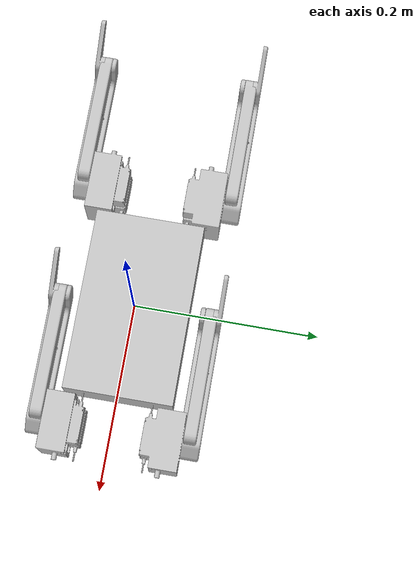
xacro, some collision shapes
<?xml version="1.0" encoding="utf-8"?>
<!-- Make changes at your own risk -->
<robot
  name="chitrak_description">
  <link name="base_link"></link>
  <link
    name="torso_link">
    <inertial>
      <origin
        xyz="-0.00238868927667727 -1.23101962146306E-05 -0.0259410834694735"
        rpy="0 0 0" />
      <mass
        value="0.531017962368296" />
      <inertia
        ixx="0.000784647282302847"
        ixy="-1.56473712454285E-07"
        ixz="-3.54024444284505E-06"
        iyy="0.000983761380504374"
        iyz="4.46505765897836E-08"
        izz="0.00139027431723193" />
    </inertial>
    <visual>
      <origin
        xyz="0 0 0"
        rpy="0 0 0" />
      <geometry>
        <mesh
          filename="package://chitrak_description/meshes/torso_link.STL" />
      </geometry>
      <material
        name="">
        <color
          rgba="0.752941176470588 0.752941176470588 0.752941176470588 1" />
      </material>
    </visual>
    <collision>
      <origin
        xyz="0 0 -0.025"
        rpy="0 0 0" />
      <geometry>
        <box size="0.20 0.12 0.05"/>
      </geometry>
    </collision>
    <collision>
      <origin
        xyz="-0.13 0 -0.025"
        rpy="0 0 0" />
      <geometry>
        <box size="0.07 0.04 0.05"/>
      </geometry>
    </collision>
    <collision>
      <origin
        xyz="0.13 0 -0.025"
        rpy="0 0 0" />
      <geometry>
        <box size="0.07 0.04 0.05"/>
      </geometry>
    </collision>
  </link>
  <joint name="torso_joint" type="fixed">
    <origin xyz ="0 0 0" rpy="0 0 0"/>
    <parent link="base_link"/>
    <child link="torso_link"/>
  </joint>
  <link
    name="fr_hip_link">
    <inertial>
      <origin
        xyz="0.0322826456698624 -0.000429460670132026 -0.0140006460468479"
        rpy="0 0 0" />
      <mass
        value="0.108648639391851" />
      <inertia
        ixx="2.69803474781915E-05"
        ixy="-8.80967987556737E-08"
        ixz="-5.44555996170503E-09"
        iyy="4.61678276210887E-05"
        iyz="-3.56636801717859E-08"
        izz="4.28733000741258E-05" />
    </inertial>
    <visual>
      <origin
        xyz="0 0 0"
        rpy="0 0 0" />
      <geometry>
        <mesh
          filename="package://chitrak_description/meshes/fr_hip_link.STL" />
      </geometry>
      <material
        name="">
        <color
          rgba="0.752941176470588 0.752941176470588 0.752941176470588 1" />
      </material>
    </visual>
    <collision>
      <origin
        xyz="0.03 -0.005 -0.014"
        rpy="0 0 0" />
      <geometry>
        <box size="0.06 0.03 0.055"/>
      </geometry>
    </collision>
  </link>
  <joint
    name="fr_hip_roll_joint"
    type="revolute">
    <origin
      xyz="0.1034 -0.0557689357599999 -0.018465"
      rpy="0 0 0" />
    <parent
      link="torso_link" />
    <child
      link="fr_hip_link" />
    <axis
      xyz="1 0 0" />
    <limit
      lower="-1.57"
      upper="1.57"
      effort="2.5"
      velocity="8.0" />
  </joint>
  <link
    name="fr_thigh_link">
    <inertial>
      <origin
        xyz="-0.0626114782296221 -0.00685326400526645 5.4771380791907E-08"
        rpy="0 0 0" />
      <mass
        value="0.0357822939678729" />
      <inertia
        ixx="1.82903525937341E-06"
        ixy="2.15935075243341E-07"
        ixz="-2.9723814137515E-12"
        iyy="1.62889851478768E-05"
        iyz="1.38202710627414E-11"
        izz="1.56570192882523E-05" />
    </inertial>
    <visual>
      <origin
        xyz="0 0 0"
        rpy="0 0 0" />
      <geometry>
        <mesh
          filename="package://chitrak_description/meshes/fr_thigh_link.STL" />
      </geometry>
      <material
        name="">
        <color
          rgba="0.752941176470588 0.752941176470588 0.752941176470588 1" />
      </material>
    </visual>
    <collision>
      <origin
        xyz="-0.065 -0.007 0"
        rpy="0 -1.57 0" />
      <geometry>
        <cylinder radius="0.008" length="0.15"/>
      </geometry>
    </collision>
  </link>
  <joint
    name="fr_hip_pitch_joint"
    type="revolute">
    <origin
      xyz="0.0220549999999999 -0.021 0.000410000000000049"
      rpy="0 0 0" />
    <parent
      link="fr_hip_link" />
    <child
      link="fr_thigh_link" />
    <axis
      xyz="0 -1 0" />
    <limit
      lower="0"
      upper="3.14"
      effort="2.5"
      velocity="8.0" />
  </joint>
  <link
    name="fr_calf_link">
    <inertial>
      <origin
        xyz="0.0724501084741344 -0.00768913764949204 -0.016189558522504"
        rpy="0 0 0" />
      <mass
        value="0.0489996592044007" />
      <inertia
        ixx="7.01622854548788E-06"
        ixy="-1.05533550815407E-06"
        ixz="7.42615947085768E-06"
        iyy="3.61411874632668E-05"
        iyz="6.49288500493328E-07"
        izz="3.45164870583299E-05" />
    </inertial>
    <visual>
      <origin
        xyz="0 0 0"
        rpy="0 0 0" />
      <geometry>
        <mesh
          filename="package://chitrak_description/meshes/fr_calf_link.STL" />
      </geometry>
      <material
        name="">
        <color
          rgba="0.752941176470588 0.752941176470588 0.752941176470588 1" />
      </material>
    </visual>
   <collision>
      <origin
        xyz="0.065 -0.008 -0.02"
        rpy="0 1.57 0" />
      <geometry>
        <cylinder radius="0.008" length="0.15"/>
      </geometry>
    </collision>
    <collision>
      <origin
        xyz="0.14 -0.009 -0.025"
        rpy="0 1.57 0" />
      <geometry>
        <sphere radius="0.013" />
      </geometry>
    </collision>
  </link>
  <joint
    name="fr_knee_joint"
    type="revolute">
    <origin
      xyz="-0.13 5.00000000004802E-05 0"
      rpy="0 0 0" />
    <parent
      link="fr_thigh_link" />
    <child
      link="fr_calf_link" />
    <axis
      xyz="0 -1 0" />
    <limit
      lower="-3.14"
      upper="0"
      effort="2.5"
      velocity="8.0" />
  </joint>
  <link
    name="fl_hip_link">
    <inertial>
      <origin
        xyz="0.0319881655901347 0.00041006097321835 -0.0140990846243295"
        rpy="0 0 0" />
      <mass
        value="0.10854268640342" />
      <inertia
        ixx="2.69792196637052E-05"
        ixy="8.7562009673017E-08"
        ixz="-4.39624893284498E-09"
        iyy="4.61463606969833E-05"
        iyz="-4.17749420685969E-10"
        izz="4.28244714163397E-05" />
    </inertial>
    <visual>
      <origin
        xyz="0 0 0"
        rpy="0 0 0" />
      <geometry>
        <mesh
          filename="package://chitrak_description/meshes/fl_hip_link.STL" />
      </geometry>
      <material
        name="">
        <color
          rgba="0.752941176470588 0.752941176470588 0.752941176470588 1" />
      </material>
    </visual>
    <collision>
      <origin
        xyz="0.03 0.005 -0.014"
        rpy="0 0 0" />
      <geometry>
        <box size="0.06 0.03 0.055"/>
      </geometry>
    </collision>
  </link>
  <joint
    name="fl_hip_roll_joint"
    type="revolute">
    <origin
      xyz="0.1034 0.0557689357600009 -0.0184649999999999"
      rpy="0 0 0" />
    <parent
      link="torso_link" />
    <child
      link="fl_hip_link" />
    <axis
      xyz="1 0 0" />
    <limit
      lower="-1.57"
      upper="1.57"
      effort="2.5"
      velocity="8.0" />
  </joint>
  <link
    name="fl_thigh_link">
    <inertial>
      <origin
        xyz="-0.062611 0.0068533 -5.4771E-08"
        rpy="0 0 0" />
      <mass
        value="0.035782" />
      <inertia
        ixx="1.829E-06"
        ixy="-2.1594E-07"
        ixz="2.9724E-12"
        iyy="1.6289E-05"
        iyz="1.382E-11"
        izz="1.5657E-05" />
    </inertial>
    <visual>
      <origin
        xyz="0 0 0"
        rpy="0 0 0" />
      <geometry>
        <mesh
          filename="package://chitrak_description/meshes/fl_thigh_link.STL" />
      </geometry>
      <material
        name="">
        <color
          rgba="0.75294 0.75294 0.75294 1" />
      </material>
    </visual>
    <collision>
      <origin
        xyz="-0.065 0.007 0"
        rpy="0 -1.57 0" />
      <geometry>
        <cylinder radius="0.008" length="0.15"/>
      </geometry>
    </collision>
  </link>
  <joint
    name="fl_hip_pitch_joint"
    type="revolute">
    <origin
      xyz="0.0215750000000005 0.0209999999999998 0"
      rpy="0 0 0" />
    <parent
      link="fl_hip_link" />
    <child
      link="fl_thigh_link" />
    <axis
      xyz="0 1 0" />
    <limit
      lower="-3.14"
      upper="0"
      effort="2.5"
      velocity="8.0" />
  </joint>
  <link
    name="fl_calf_link">
    <inertial>
      <origin
        xyz="0.0724809018472975 0.00768626053965757 -0.0162002299958432"
        rpy="0 0 0" />
      <mass
        value="0.0489855091798814" />
      <inertia
        ixx="7.00076258765256E-06"
        ixy="1.06344924655147E-06"
        ixz="7.40498912888899E-06"
        iyy="3.60933899371474E-05"
        iyz="-6.52952403984501E-07"
        izz="3.44788847366438E-05" />
    </inertial>
    <visual>
      <origin
        xyz="0 0 0"
        rpy="0 0 0" />
      <geometry>
        <mesh
          filename="package://chitrak_description/meshes/fl_calf_link.STL" />
      </geometry>
      <material
        name="">
        <color
          rgba="0.752941176470588 0.752941176470588 0.752941176470588 1" />
      </material>
    </visual>
    <collision>
      <origin
        xyz="0.065 0.008 -0.02"
        rpy="0 1.57 0" />
      <geometry>
        <cylinder radius="0.008" length="0.15"/>
      </geometry>
    </collision>
    <collision>
      <origin
        xyz="0.14 0.009 -0.025"
        rpy="0 1.57 0" />
      <geometry>
        <sphere radius="0.013" />
      </geometry>
    </collision>
  </link>
  <joint
    name="fl_knee_joint"
    type="revolute">
    <origin
      xyz="-0.13 -4.99999999997447E-05 0"
      rpy="0 0 0" />
    <parent
      link="fl_thigh_link" />
    <child
      link="fl_calf_link" />
    <axis
      xyz="0 1 0" />
    <limit
      lower="0"
      upper="3.14"
      effort="2.5"
      velocity="8.0" />
  </joint>
  <link
    name="br_hip_link">
    <inertial>
      <origin
        xyz="-0.032135543416442 -0.000410060973218468 -0.013973199397692"
        rpy="0 0 0" />
      <mass
        value="0.10854268640342" />
      <inertia
        ixx="2.69792196637053E-05"
        ixy="8.75620096729818E-08"
        ixz="4.39624893285847E-09"
        iyy="4.61463606969833E-05"
        iyz="4.17749420667756E-10"
        izz="4.28244714163397E-05" />
    </inertial>
    <visual>
      <origin
        xyz="0 0 0"
        rpy="0 0 0" />
      <geometry>
        <mesh
          filename="package://chitrak_description/meshes/br_hip_link.STL" />
      </geometry>
      <material
        name="">
        <color
          rgba="0.752941176470588 0.752941176470588 0.752941176470588 1" />
      </material>
    </visual>
    <collision>
      <origin
        xyz="-0.03 -0.005 -0.014"
        rpy="0 0 0" />
      <geometry>
        <box size="0.06 0.03 0.055"/>
      </geometry>
    </collision>
  </link>
  <joint
    name="br_hip_roll_joint"
    type="revolute">
    <origin
      xyz="-0.1034 -0.0557689357600001 -0.0184649999999999"
      rpy="0 0 0" />
    <parent
      link="torso_link" />
    <child
      link="br_hip_link" />
    <axis
      xyz="-1 0 0" />
    <limit
      lower="-1.57"
      upper="1.57"
      effort="2.5"
      velocity="8.0" />
  </joint>
  <link
    name="br_thigh_link">
    <inertial>
      <origin
        xyz="-0.0626114782296221 -0.00685326400526678 5.47713807641514E-08"
        rpy="0 0 0" />
      <mass
        value="0.0357822939678729" />
      <inertia
        ixx="1.82903525937341E-06"
        ixy="2.15935075243268E-07"
        ixz="-2.97238141639413E-12"
        iyy="1.62889851478768E-05"
        iyz="1.38202710644727E-11"
        izz="1.56570192882523E-05" />
    </inertial>
    <visual>
      <origin
        xyz="0 0 0"
        rpy="0 0 0" />
      <geometry>
        <mesh
          filename="package://chitrak_description/meshes/br_thigh_link.STL" />
      </geometry>
      <material
        name="">
        <color
          rgba="0.752941176470588 0.752941176470588 0.752941176470588 1" />
      </material>
    </visual>
    <collision>
      <origin
        xyz="-0.065 -0.007 0"
        rpy="0 1.57 0" />
      <geometry>
        <cylinder radius="0.008" length="0.15"/>
      </geometry>
    </collision>
  </link>
  <joint
    name="br_hip_pitch_joint"
    type="revolute">
    <origin
      xyz="-0.041945 -0.0209999999999999 0.000409999999999938"
      rpy="0 0 0" />
    <parent
      link="br_hip_link" />
    <child
      link="br_thigh_link" />
    <axis
      xyz="0 -1 0" />
    <limit
      lower="0"
      upper="3.14"
      effort="2.5"
      velocity="8.0" />
  </joint>
  <link
    name="br_calf_link">
    <inertial>
      <origin
        xyz="0.0724501084741344 -0.0076891376494919 -0.016189558522504"
        rpy="0 0 0" />
      <mass
        value="0.0489996592044007" />
      <inertia
        ixx="7.01622854548784E-06"
        ixy="-1.05533550815411E-06"
        ixz="7.42615947085765E-06"
        iyy="3.61411874632668E-05"
        iyz="6.49288500493334E-07"
        izz="3.45164870583299E-05" />
    </inertial>
    <visual>
      <origin
        xyz="0 0 0"
        rpy="0 0 0" />
      <geometry>
        <mesh
          filename="package://chitrak_description/meshes/br_calf_link.STL" />
      </geometry>
      <material
        name="">
        <color
          rgba="0.752941176470588 0.752941176470588 0.752941176470588 1" />
      </material>
    </visual>
    <collision>
      <origin
        xyz="0.065 -0.008 -0.02"
        rpy="0 1.57 0" />
      <geometry>
        <cylinder radius="0.008" length="0.15"/>
      </geometry>
    </collision>
    <collision>
      <origin
        xyz="0.14 -0.009 -0.025"
        rpy="0 1.57 0" />
      <geometry>
        <sphere radius="0.013" />
      </geometry>
    </collision>
  </link>
  <joint
    name="br_knee_joint"
    type="revolute">
    <origin
      xyz="-0.13 4.99999999997308E-05 0"
      rpy="0 0 0" />
    <parent
      link="br_thigh_link" />
    <child
      link="br_calf_link" />
    <axis
      xyz="0 -1 0" />
    <limit
      lower="-3.14"
      upper="0"
      effort="2.5"
      velocity="8.0" />
  </joint>
  <link
    name="bl_hip_link">
    <inertial>
      <origin
        xyz="-0.0319881774598005 0.000429460670132019 -0.0140006460468479"
        rpy="0 0 0" />
      <mass
        value="0.108648639391851" />
      <inertia
        ixx="2.69803474781915E-05"
        ixy="-8.80967987556525E-08"
        ixz="5.44555996171056E-09"
        iyy="4.61678276210886E-05"
        iyz="3.56636801717788E-08"
        izz="4.28733000741258E-05" />
    </inertial>
    <visual>
      <origin
        xyz="0 0 0"
        rpy="0 0 0" />
      <geometry>
        <mesh
          filename="package://chitrak_description/meshes/bl_hip_link.STL" />
      </geometry>
      <material
        name="">
        <color
          rgba="0.752941176470588 0.752941176470588 0.752941176470588 1" />
      </material>
    </visual>
    <collision>
      <origin
        xyz="-0.03 0.005 -0.014"
        rpy="0 0 0" />
      <geometry>
        <box size="0.06 0.03 0.055"/>
      </geometry>
    </collision>
  </link>
  <joint
    name="bl_hip_roll_joint"
    type="revolute">
    <origin
      xyz="-0.1034 0.055769 -0.018465"
      rpy="0 0 0" />
    <parent
      link="torso_link" />
    <child
      link="bl_hip_link" />
    <axis
      xyz="-1 0 0" />
    <limit
      lower="-1.57"
      upper="1.57"
      effort="2.5"
      velocity="8.0" />
  </joint>
  <link
    name="bl_thigh_link">
    <inertial>
      <origin
        xyz="-0.0626114782296221 0.00685326400526652 -5.47713807988459E-08"
        rpy="0 0 0" />
      <mass
        value="0.0357822939678729" />
      <inertia
        ixx="1.82903525937341E-06"
        ixy="-2.15935075243323E-07"
        ixz="2.97238141685938E-12"
        iyy="1.62889851478768E-05"
        iyz="1.38202710631286E-11"
        izz="1.56570192882523E-05" />
    </inertial>
    <visual>
      <origin
        xyz="0 0 0"
        rpy="0 0 0" />
      <geometry>
        <mesh
          filename="package://chitrak_description/meshes/bl_thigh_link.STL" />
      </geometry>
      <material
        name="">
        <color
          rgba="0.752941176470588 0.752941176470588 0.752941176470588 1" />
      </material>
    </visual>
    <collision>
      <origin
        xyz="-0.065 0.007 0"
        rpy="0 -1.57 0" />
      <geometry>
        <cylinder radius="0.008" length="0.15"/>
      </geometry>
    </collision>
  </link>
  <joint
    name="bl_hip_pitch_joint"
    type="revolute">
    <origin
      xyz="-0.041945 0.021 0.00041"
      rpy="0 0 0" />
    <parent
      link="bl_hip_link" />
    <child
      link="bl_thigh_link" />
    <axis
      xyz="0 1 0" />
    <limit
      lower="-3.14"
      upper="0"
      effort="2.5"
      velocity="8.0" />
  </joint>
  <link
    name="bl_calf_link">
    <inertial>
      <origin
        xyz="0.0724809018472974 0.00768626053965776 -0.0162002299958433"
        rpy="0 0 0" />
      <mass
        value="0.0489855091798813" />
      <inertia
        ixx="7.00076258765258E-06"
        ixy="1.0634492465514E-06"
        ixz="7.40498912888901E-06"
        iyy="3.60933899371474E-05"
        iyz="-6.5295240398448E-07"
        izz="3.44788847366437E-05" />
    </inertial>
    <visual>
      <origin
        xyz="0 0 0"
        rpy="0 0 0" />
      <geometry>
        <mesh
          filename="package://chitrak_description/meshes/bl_calf_link.STL" />
      </geometry>
      <material
        name="">
        <color
          rgba="0.752941176470588 0.752941176470588 0.752941176470588 1" />
      </material>
    </visual>
    <collision>
      <origin
        xyz="0.065 0.008 -0.02"
        rpy="0 1.57 0" />
      <geometry>
        <cylinder radius="0.008" length="0.15"/>
      </geometry>
    </collision>
    <collision>
      <origin
        xyz="0.14 0.009 -0.025"
        rpy="0 1.57 0" />
      <geometry>
        <sphere radius="0.013" />
      </geometry>
    </collision>
  </link>
  <joint
    name="bl_knee_joint"
    type="revolute">
    <origin
      xyz="-0.13 -5E-05 0"
      rpy="0 0 0" />
    <parent
      link="bl_thigh_link" />
    <child
      link="bl_calf_link" />
    <axis
      xyz="0 1 0" />
    <limit
      lower="0"
      upper="3.14"
      effort="2.5"
      velocity="8.0" />
  </joint>
</robot>
